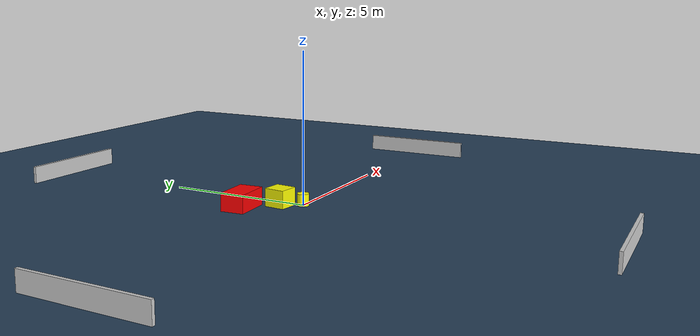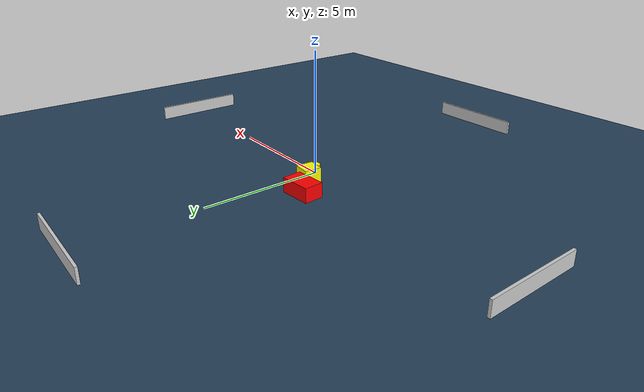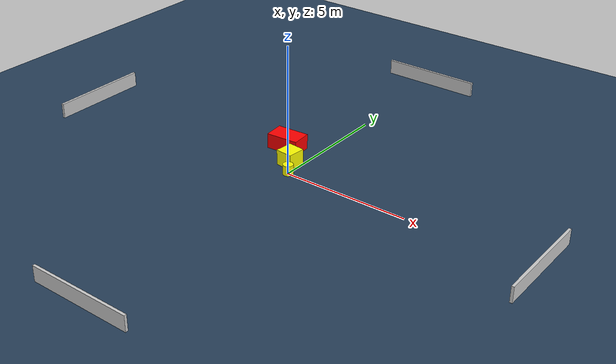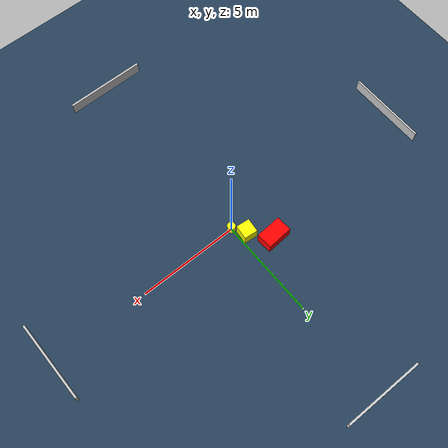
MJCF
<?xml version="1.0" ?>
<mujoco model="generated_environment">
  <option timestep="0.01" integrator="RK4" cone="elliptic"/>
  <default>
    <geom density="1"/>
  </default>
  <asset>
    <texture builtin="gradient" height="3072" name="skybox" rgb1="0.3 0.5 0.7" rgb2="0 0 0" type="skybox" width="512"/>
    <texture builtin="checker" height="300" name="groundplane" rgb1="0.2 0.3 0.4" rgb2="0.1 0.2 0.3" type="2d" width="300"/>
    <material name="groundplane" reflectance="0.2" texrepeat="5 5" texture="groundplane"/>
  </asset>
  <worldbody>
    <light dir="0 0 -1" directional="true" pos="0 0 1.5"/>
    <geom condim="3" friction="0.5 0.005 0.001" material="groundplane" name="floor" pos="0 0 0" size="0 0 0.05" type="plane"/>
    <body name="walls">
      <geom name="wall_1" condim="4" pos="-10.0 0.0 0.3" rgba="0.800000011920929 0.800000011920929 0.800000011920929 1.0" size="0.05 2.0 0.3" type="box"/>
      <geom name="wall_2" condim="4" pos="10.0 0.0 0.3" rgba="0.800000011920929 0.800000011920929 0.800000011920929 1.0" size="0.05 2.0 0.3" type="box"/>
      <geom name="wall_3" condim="4" pos="0.0 -10.0 0.3" rgba="0.800000011920929 0.800000011920929 0.800000011920929 1.0" size="2.0 0.05 0.3" type="box"/>
      <geom name="wall_4" condim="4" pos="0.0 10.0 0.3" rgba="0.800000011920929 0.800000011920929 0.800000011920929 1.0" size="2.0 0.05 0.3" type="box"/>
    </body>
    <body name="robot">
      <joint name="joint_x" type="slide" pos="0 0 0" axis="1 0 0"/>
      <joint name="joint_y" type="slide" pos="0 0 0" axis="0 1 0"/>
      <geom name="robot" type="cylinder" pos="0.0 0.0 0.2" size="0.2 0.2 0.0" mass="5.0" friction="1.0 0.005 0.0001" condim="4" rgba="1.0 1.0 0.0 1.0"/>
    </body>
    <body name="obstacle_1_movable">
      <geom name="obstacle_1_movable" condim="4" pos="-0.39992248363285876 0.6337880278965174 0.3" euler="0 0 264.3080066342019" friction="0.0 0.005 0.001" rgba="1.0 1.0 0.0 1.0" size="0.35263461721123046 0.3397966953075493 0.3" type="box" mass="0.1"/>
      <joint type="free"/>
    </body>
    <body name="obstacle_2_static">
      <geom name="obstacle_2_static" condim="4" pos="-1.2499909672786418 1.5599249896820717 0.3" euler="0 0 184.01380692023645" friction="0.0 0.005 0.001" rgba="1.0 0.0 0.0 1.0" size="0.6464088181526455 0.3972319304862622 0.3" type="box"/>
    </body>
  </worldbody>
  <actuator>
    <motor name="actuator_x" joint="joint_x" gear="1" ctrlrange="-1 1"/>
    <motor name="actuator_y" joint="joint_y" gear="1" ctrlrange="-1 1"/>
  </actuator>
</mujoco>
